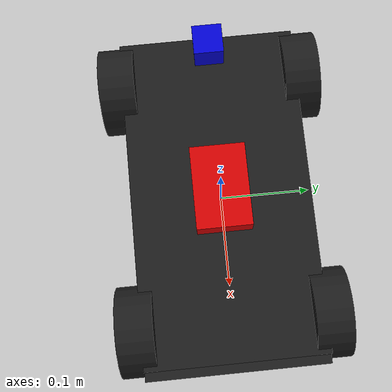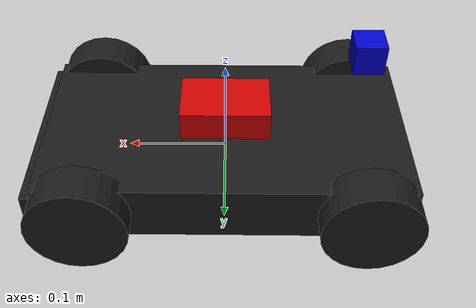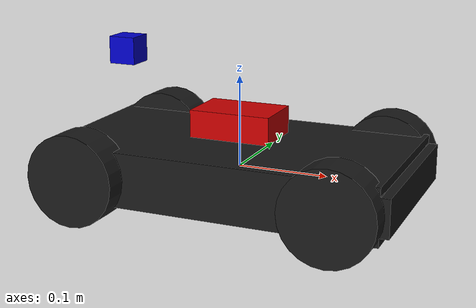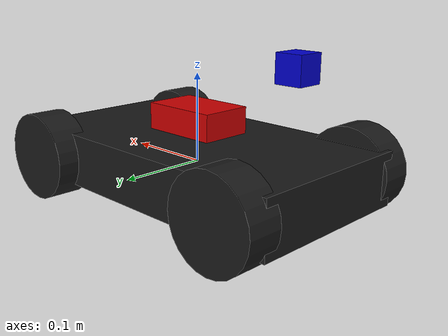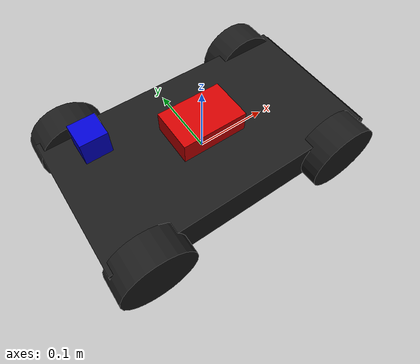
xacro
<?xml version="1.0"?>
<robot name="f1tenth" xmlns:xacro="http://www.ros.org/wiki/xacro">

  <xacro:property name="chassis_length" value="0.37"/>
  <xacro:property name="chassis_width" value="0.20"/>
  <xacro:property name="chassis_height" value="0.06"/>

  <xacro:property name="wheel_radius" value="0.05"/>
  <xacro:property name="wheel_width" value="0.04"/>

  <xacro:property name="wheel_base" value="0.28"/>
  <xacro:property name="track_width" value="0.21"/>

  <material name="black"><color rgba="0.1 0.1 0.1 1.0"/></material>
  <material name="white"><color rgba="1.0 1.0 1.0 1.0"/></material>
  <material name="red"><color rgba="0.8 0.0 0.0 1.0"/></material>
  <material name="blue"><color rgba="0.0 0.0 0.8 1.0"/></material>

  <xacro:macro name="box_inertial" params="mass x y z">
    <inertial>
      <mass value="${mass}"/>
      <inertia ixx="${mass / 12.0 * (y*y + z*z)}" ixy="0" ixz="0" iyy="${mass / 12.0 * (x*x + z*z)}" iyz="0" izz="${mass / 12.0 * (x*x + y*y)}"/>
    </inertial>
  </xacro:macro>

  <xacro:macro name="wheel_inertial" params="mass radius length">
    <inertial>
      <mass value="${mass}"/>
      <inertia ixx="${mass / 12.0 * (3 * radius * radius + length * length)}" ixy="0" ixz="0" iyy="${0.5 * mass * radius * radius}" iyz="0" izz="${mass / 12.0 * (3 * radius * radius + length * length)}"/>
    </inertial>
  </xacro:macro>

  <link name="base_link">
    <visual>
      <geometry><box size="${chassis_length} ${chassis_width} ${chassis_height}"/></geometry>
      <material name="black"/>
    </visual>
    <collision>
      <geometry><box size="${chassis_length} ${chassis_width} ${chassis_height}"/></geometry>
    </collision>
    <xacro:box_inertial mass="2.0" x="${chassis_length}" y="${chassis_width}" z="${chassis_height}"/>
  </link>

  <link name="base_footprint"/>
  <joint name="base_footprint_joint" type="fixed">
    <parent link="base_link"/>
    <child link="base_footprint"/>
    <origin xyz="0 0 -${wheel_radius}" rpy="0 0 0"/>
  </joint>

  <link name="raspi">
    <visual>
      <geometry><box size="0.09 0.06 0.03"/></geometry>
      <material name="red"/>
    </visual>
  </link>
  <joint name="raspi_joint" type="fixed">
    <parent link="base_link"/>
    <child link="raspi"/>
    <origin xyz="0 0 ${chassis_height/2 + 0.02}"/>
  </joint>

  <link name="bumper">
    <visual>
      <geometry><box size="0.02 0.20 0.04"/></geometry>
      <material name="black"/>
    </visual>
  </link>
  <joint name="bumper_joint" type="fixed">
    <parent link="base_link"/>
    <child link="bumper"/>
    <origin xyz="${chassis_length/2} 0 0"/>
  </joint>

  <link name="camera_link">
    <visual>
      <geometry><box size="0.03 0.03 0.03"/></geometry>
      <material name="blue"/>
    </visual>
  </link>
  <joint name="camera_joint" type="fixed">
    <parent link="base_link"/>
    <child link="camera_link"/>
    <origin xyz="${-chassis_length/2 + 0.05} 0 0.12" rpy="0 0 0"/>
  </joint>

  <xacro:macro name="wheel" params="prefix suffix x_reflect y_reflect is_steer">
    <link name="${prefix}_${suffix}_wheel">
      <visual>
        <origin rpy="${pi/2} 0 0"/>
        <geometry><cylinder radius="${wheel_radius}" length="${wheel_width}"/></geometry>
        <material name="black"/>
      </visual>
      <collision>
        <origin rpy="${pi/2} 0 0"/>
        <geometry><cylinder radius="${wheel_radius}" length="${wheel_width}"/></geometry>
      </collision>
      <xacro:wheel_inertial mass="0.2" radius="${wheel_radius}" length="${wheel_width}"/>
    </link>

    <xacro:if value="${is_steer}">
      <link name="${prefix}_${suffix}_steer">
        <xacro:box_inertial mass="0.05" x="0.01" y="0.01" z="0.01"/>
      </link>
      <joint name="${prefix}_${suffix}_steer_joint" type="revolute">
        <parent link="base_link"/>
        <child link="${prefix}_${suffix}_steer"/>
        <origin xyz="${x_reflect * wheel_base/2} ${y_reflect * track_width/2} 0"/>
        <axis xyz="0 0 1"/>
        <limit lower="-0.5" upper="0.5" effort="100.0" velocity="10.0"/>
      </joint>
      <joint name="${prefix}_${suffix}_wheel_joint" type="continuous">
        <parent link="${prefix}_${suffix}_steer"/>
        <child link="${prefix}_${suffix}_wheel"/>
        <axis xyz="0 1 0"/>
        <limit effort="10.0" velocity="100.0"/>
      </joint>
    </xacro:if>

    <xacro:unless value="${is_steer}">
      <joint name="${prefix}_${suffix}_wheel_joint" type="continuous">
        <parent link="base_link"/>
        <child link="${prefix}_${suffix}_wheel"/>
        <origin xyz="${x_reflect * wheel_base/2} ${y_reflect * track_width/2} 0"/>
        <axis xyz="0 1 0"/>
        <limit effort="10.0" velocity="100.0"/>
      </joint>
    </xacro:unless>
  </xacro:macro>

  <xacro:wheel prefix="front" suffix="left" x_reflect="1" y_reflect="1" is_steer="true"/>
  <xacro:wheel prefix="front" suffix="right" x_reflect="1" y_reflect="-1" is_steer="true"/>
  <xacro:wheel prefix="rear" suffix="left" x_reflect="-1" y_reflect="1" is_steer="false"/>
  <xacro:wheel prefix="rear" suffix="right" x_reflect="-1" y_reflect="-1" is_steer="false"/>

  <link name="steering_wheel">
    <xacro:box_inertial mass="0.01" x="0.01" y="0.01" z="0.01"/>
  </link>
  <joint name="steering_wheel_joint" type="revolute">
    <parent link="base_link"/>
    <child link="steering_wheel"/>
    <origin xyz="0 0 0" rpy="0 0 0"/>
    <axis xyz="0 0 1"/>
    <limit lower="-10.0" upper="10.0" effort="100.0" velocity="10.0"/>
  </joint>

  <gazebo>
    <plugin name="gazebo_ros_joint_state_publisher" filename="libgazebo_ros_joint_state_publisher.so">
      <ros>
        <namespace>/</namespace>
        <remapping>joint_states:=joint_states</remapping>
      </ros>
      <update_rate>100</update_rate>
      <joint_name>front_left_steer_joint</joint_name>
      <joint_name>front_right_steer_joint</joint_name>
      <joint_name>front_left_wheel_joint</joint_name>
      <joint_name>front_right_wheel_joint</joint_name>
      <joint_name>rear_left_wheel_joint</joint_name>
      <joint_name>rear_right_wheel_joint</joint_name>
      <joint_name>steering_wheel_joint</joint_name>
    </plugin>
    <plugin name="gazebo_ros_ackermann_drive" filename="libgazebo_ros_ackermann_drive.so">
      <ros>
        <namespace>/</namespace>
        <remapping>cmd_vel:=cmd_vel</remapping>
        <remapping>odom:=odom</remapping>
      </ros>

      <update_rate>100.0</update_rate>

      <front_left_joint>front_left_wheel_joint</front_left_joint>
      <front_right_joint>front_right_wheel_joint</front_right_joint>
      <rear_left_joint>rear_left_wheel_joint</rear_left_joint>
      <rear_right_joint>rear_right_wheel_joint</rear_right_joint>
      <left_steering_joint>front_left_steer_joint</left_steering_joint>
      <right_steering_joint>front_right_steer_joint</right_steering_joint>
      <steering_wheel_joint>steering_wheel_joint</steering_wheel_joint>

      <max_steer>0.5</max_steer>
      <max_steering_angle>7.85</max_steering_angle>
      <max_speed>20.0</max_speed>
      <wheel_separation>${track_width}</wheel_separation>
      <wheel_base>${wheel_base}</wheel_base>
      <wheel_diameter>${wheel_radius * 2}</wheel_diameter>

      <!-- PID tuning — matched to BFMC reference plugin (kp=10, ki=0, kd=0.1) -->
      <left_steering_pid_gain>10.0 0.0 0.1</left_steering_pid_gain>
      <left_steering_i_range>-0.5 0.5</left_steering_i_range>
      <right_steering_pid_gain>10.0 0.0 0.1</right_steering_pid_gain>
      <right_steering_i_range>-0.5 0.5</right_steering_i_range>
      <linear_velocity_pid_gain>500.0 0.0 1.0</linear_velocity_pid_gain>
      <linear_velocity_i_range>-10 10</linear_velocity_i_range>

      <publish_odom>true</publish_odom>
      <publish_odom_tf>true</publish_odom_tf>
      <publish_wheel_tf>false</publish_wheel_tf>
      <odometry_frame>odom</odometry_frame>
      <robot_base_frame>base_link</robot_base_frame>
    </plugin>
  </gazebo>

  <gazebo reference="base_link">
    <material>Gazebo/Blue</material>
  </gazebo>

  <gazebo reference="bumper">
    <material>Gazebo/Blue</material>
  </gazebo>

  <gazebo reference="raspi">
    <material>Gazebo/Blue</material>
  </gazebo>

  <gazebo reference="front_left_wheel">
    <material>Gazebo/Blue</material>
    <mu1>0.7</mu1>
    <mu2>0.2</mu2>
    <kp>10000000.0</kp>
    <kd>1.0</kd>
    <minDepth>0.001</minDepth>
    <maxVel>0.01</maxVel>
    <fdir1>1 0 0</fdir1>
  </gazebo>

  <gazebo reference="front_right_wheel">
    <material>Gazebo/Blue</material>
    <mu1>0.7</mu1>
    <mu2>0.2</mu2>
    <kp>10000000.0</kp>
    <kd>1.0</kd>
    <minDepth>0.001</minDepth>
    <maxVel>0.01</maxVel>
    <fdir1>1 0 0</fdir1>
  </gazebo>

  <gazebo reference="rear_left_wheel">
    <material>Gazebo/Blue</material>
    <mu1>0.7</mu1>
    <mu2>0.7</mu2>
    <kp>10000000.0</kp>
    <kd>1.0</kd>
    <minDepth>0.001</minDepth>
    <maxVel>0.01</maxVel>
    <fdir1>1 0 0</fdir1>
  </gazebo>

  <gazebo reference="rear_right_wheel">
    <material>Gazebo/Blue</material>
    <mu1>0.7</mu1>
    <mu2>0.7</mu2>
    <kp>10000000.0</kp>
    <kd>1.0</kd>
    <minDepth>0.001</minDepth>
    <maxVel>0.01</maxVel>
    <fdir1>1 0 0</fdir1>
  </gazebo>

  <gazebo reference="camera_link">
    <material>Gazebo/Blue</material>
    <sensor name="camera" type="camera">
      <update_rate>30</update_rate>
      <camera>
        <horizontal_fov>1.396</horizontal_fov>
        <image><width>640</width><height>480</height></image>
      </camera>
      <plugin name="camera_controller" filename="libgazebo_ros_camera.so">
        <ros><remapping>image_raw:=camera/image_raw</remapping></ros>
        <frame_name>camera_link</frame_name>
      </plugin>
    </sensor>
  </gazebo>

</robot>
